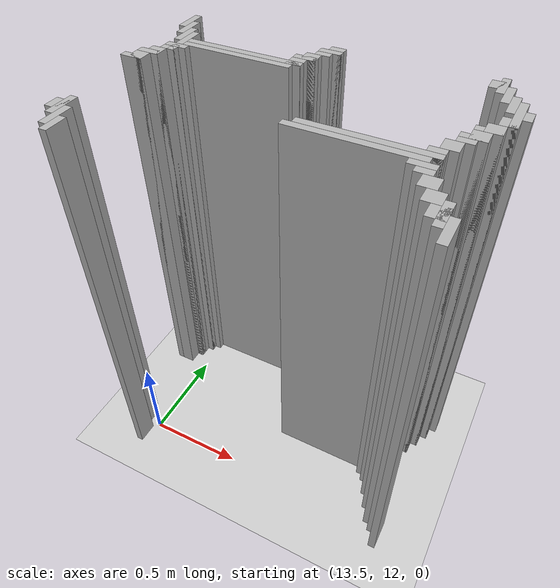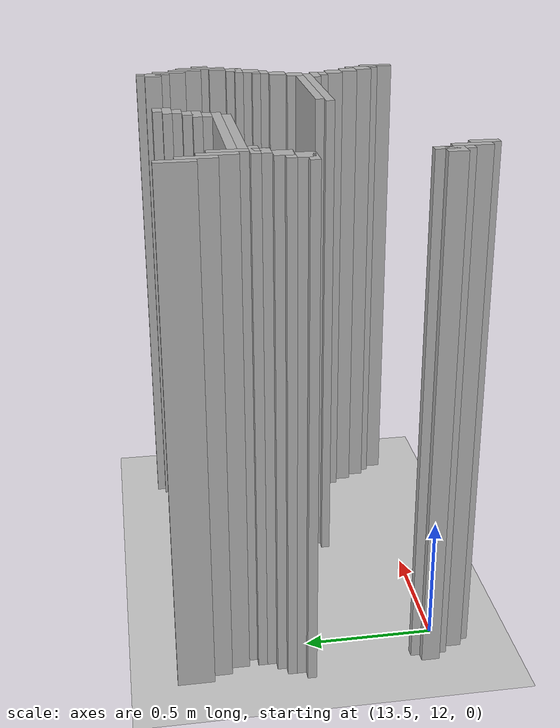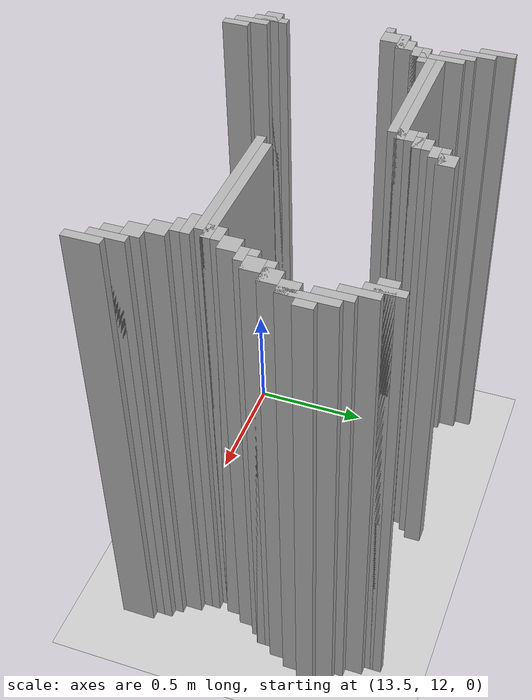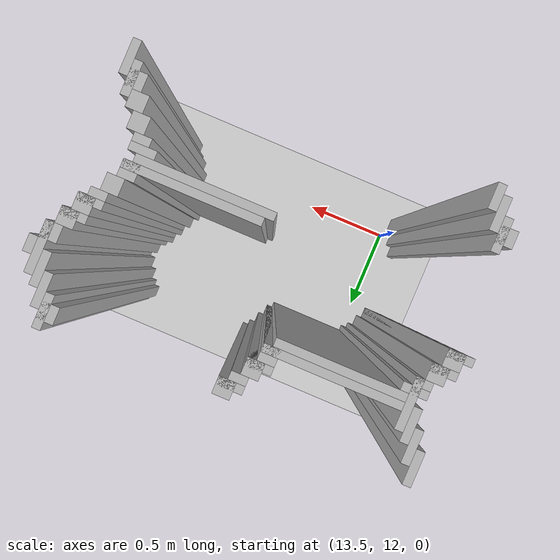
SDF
<sdf version="1.6">
 <world name="slam_world">
  <model name="ground_plane">
   <static>true</static>
   <link name="link">
    <collision name="collision">
     <geometry><plane><normal>0 0 1</normal><size>100 100</size></plane></geometry>
    </collision>
    <visual name="visual">
     <geometry><plane><normal>0 0 1</normal><size>100 100</size></plane></geometry>
     <material>
      <ambient>0.8 0.8 0.8 1</ambient>
      <diffuse>0.8 0.8 0.8 1</diffuse>
      <specular>0.8 0.8 0.8 1</specular>
     </material>
    </visual>
   </link>
  </model>
  <model name="wall_1477">
   <static>true</static>
   <pose>13.346867749419953 12.946635730858468 1.0 0 0 0</pose>
   <link name="link">
    <collision name="collision">
     <geometry><box><size>0.03480278422273782 0.13921113689095127 2.0</size></box></geometry>
    </collision>
    <visual name="visual">
     <geometry><box><size>0.03480278422273782 0.13921113689095127 2.0</size></box></geometry>
     <material><ambient>0.5 0.5 0.5 1</ambient><diffuse>0.7 0.7 0.7 1</diffuse></material>
    </visual>
   </link>
  </model>
  <model name="wall_1479">
   <static>true</static>
   <pose>14.80858468677494 12.946635730858468 1.0 0 0 0</pose>
   <link name="link">
    <collision name="collision">
     <geometry><box><size>0.03480278422273782 0.13921113689095127 2.0</size></box></geometry>
    </collision>
    <visual name="visual">
     <geometry><box><size>0.03480278422273782 0.13921113689095127 2.0</size></box></geometry>
     <material><ambient>0.5 0.5 0.5 1</ambient><diffuse>0.7 0.7 0.7 1</diffuse></material>
    </visual>
   </link>
  </model>
  <model name="wall_1494">
   <static>true</static>
   <pose>14.095127610208817 12.946635730858468 1.0 0 0 0</pose>
   <link name="link">
    <collision name="collision">
     <geometry><box><size>0.06960556844547564 0.06960556844547564 2.0</size></box></geometry>
    </collision>
    <visual name="visual">
     <geometry><box><size>0.06960556844547564 0.06960556844547564 2.0</size></box></geometry>
     <material><ambient>0.5 0.5 0.5 1</ambient><diffuse>0.7 0.7 0.7 1</diffuse></material>
    </visual>
   </link>
  </model>
  <model name="wall_1495">
   <static>true</static>
   <pose>14.791183294663572 12.946635730858468 1.0 0 0 0</pose>
   <link name="link">
    <collision name="collision">
     <geometry><box><size>0.06960556844547564 0.06960556844547564 2.0</size></box></geometry>
    </collision>
    <visual name="visual">
     <geometry><box><size>0.06960556844547564 0.06960556844547564 2.0</size></box></geometry>
     <material><ambient>0.5 0.5 0.5 1</ambient><diffuse>0.7 0.7 0.7 1</diffuse></material>
    </visual>
   </link>
  </model>
  <model name="wall_1509">
   <static>true</static>
   <pose>13.38167053364269 12.877030162412993 1.0 0 0 0</pose>
   <link name="link">
    <collision name="collision">
     <geometry><box><size>0.03480278422273782 0.13921113689095127 2.0</size></box></geometry>
    </collision>
    <visual name="visual">
     <geometry><box><size>0.03480278422273782 0.13921113689095127 2.0</size></box></geometry>
     <material><ambient>0.5 0.5 0.5 1</ambient><diffuse>0.7 0.7 0.7 1</diffuse></material>
    </visual>
   </link>
  </model>
  <model name="wall_1510">
   <static>true</static>
   <pose>14.077726218097448 12.929234338747099 1.0 0 0 0</pose>
   <link name="link">
    <collision name="collision">
     <geometry><box><size>0.10440835266821345 0.03480278422273782 2.0</size></box></geometry>
    </collision>
    <visual name="visual">
     <geometry><box><size>0.10440835266821345 0.03480278422273782 2.0</size></box></geometry>
     <material><ambient>0.5 0.5 0.5 1</ambient><diffuse>0.7 0.7 0.7 1</diffuse></material>
    </visual>
   </link>
  </model>
  <model name="wall_1511">
   <static>true</static>
   <pose>14.84338747099768 12.877030162412993 1.0 0 0 0</pose>
   <link name="link">
    <collision name="collision">
     <geometry><box><size>0.03480278422273782 0.13921113689095127 2.0</size></box></geometry>
    </collision>
    <visual name="visual">
     <geometry><box><size>0.03480278422273782 0.13921113689095127 2.0</size></box></geometry>
     <material><ambient>0.5 0.5 0.5 1</ambient><diffuse>0.7 0.7 0.7 1</diffuse></material>
    </visual>
   </link>
  </model>
  <model name="wall_1520">
   <static>true</static>
   <pose>14.06032482598608 12.894431554524362 1.0 0 0 0</pose>
   <link name="link">
    <collision name="collision">
     <geometry><box><size>0.06960556844547564 0.03480278422273782 2.0</size></box></geometry>
    </collision>
    <visual name="visual">
     <geometry><box><size>0.06960556844547564 0.03480278422273782 2.0</size></box></geometry>
     <material><ambient>0.5 0.5 0.5 1</ambient><diffuse>0.7 0.7 0.7 1</diffuse></material>
    </visual>
   </link>
  </model>
  <model name="wall_1534">
   <static>true</static>
   <pose>13.416473317865428 12.807424593967516 1.0 0 0 0</pose>
   <link name="link">
    <collision name="collision">
     <geometry><box><size>0.03480278422273782 0.13921113689095127 2.0</size></box></geometry>
    </collision>
    <visual name="visual">
     <geometry><box><size>0.03480278422273782 0.13921113689095127 2.0</size></box></geometry>
     <material><ambient>0.5 0.5 0.5 1</ambient><diffuse>0.7 0.7 0.7 1</diffuse></material>
    </visual>
   </link>
  </model>
  <model name="wall_1535">
   <static>true</static>
   <pose>14.02552204176334 12.842227378190255 1.0 0 0 0</pose>
   <link name="link">
    <collision name="collision">
     <geometry><box><size>0.06960556844547564 0.06960556844547564 2.0</size></box></geometry>
    </collision>
    <visual name="visual">
     <geometry><box><size>0.06960556844547564 0.06960556844547564 2.0</size></box></geometry>
     <material><ambient>0.5 0.5 0.5 1</ambient><diffuse>0.7 0.7 0.7 1</diffuse></material>
    </visual>
   </link>
  </model>
  <model name="wall_1536">
   <static>true</static>
   <pose>14.878190255220417 12.807424593967516 1.0 0 0 0</pose>
   <link name="link">
    <collision name="collision">
     <geometry><box><size>0.03480278422273782 0.13921113689095127 2.0</size></box></geometry>
    </collision>
    <visual name="visual">
     <geometry><box><size>0.03480278422273782 0.13921113689095127 2.0</size></box></geometry>
     <material><ambient>0.5 0.5 0.5 1</ambient><diffuse>0.7 0.7 0.7 1</diffuse></material>
    </visual>
   </link>
  </model>
  <model name="wall_1550">
   <static>true</static>
   <pose>13.451276102088167 12.737819025522041 1.0 0 0 0</pose>
   <link name="link">
    <collision name="collision">
     <geometry><box><size>0.03480278422273782 0.2088167053364269 2.0</size></box></geometry>
    </collision>
    <visual name="visual">
     <geometry><box><size>0.03480278422273782 0.2088167053364269 2.0</size></box></geometry>
     <material><ambient>0.5 0.5 0.5 1</ambient><diffuse>0.7 0.7 0.7 1</diffuse></material>
    </visual>
   </link>
  </model>
  <model name="wall_1551">
   <static>true</static>
   <pose>14.008120649651971 12.824825986078885 1.0 0 0 0</pose>
   <link name="link">
    <collision name="collision">
     <geometry><box><size>0.10440835266821345 0.03480278422273782 2.0</size></box></geometry>
    </collision>
    <visual name="visual">
     <geometry><box><size>0.10440835266821345 0.03480278422273782 2.0</size></box></geometry>
     <material><ambient>0.5 0.5 0.5 1</ambient><diffuse>0.7 0.7 0.7 1</diffuse></material>
    </visual>
   </link>
  </model>
  <model name="wall_1552">
   <static>true</static>
   <pose>14.912993039443155 12.737819025522041 1.0 0 0 0</pose>
   <link name="link">
    <collision name="collision">
     <geometry><box><size>0.03480278422273782 0.2088167053364269 2.0</size></box></geometry>
    </collision>
    <visual name="visual">
     <geometry><box><size>0.03480278422273782 0.2088167053364269 2.0</size></box></geometry>
     <material><ambient>0.5 0.5 0.5 1</ambient><diffuse>0.7 0.7 0.7 1</diffuse></material>
    </visual>
   </link>
  </model>
  <model name="wall_1561">
   <static>true</static>
   <pose>13.990719257540603 12.772621809744779 1.0 0 0 0</pose>
   <link name="link">
    <collision name="collision">
     <geometry><box><size>0.06960556844547564 0.06960556844547564 2.0</size></box></geometry>
    </collision>
    <visual name="visual">
     <geometry><box><size>0.06960556844547564 0.06960556844547564 2.0</size></box></geometry>
     <material><ambient>0.5 0.5 0.5 1</ambient><diffuse>0.7 0.7 0.7 1</diffuse></material>
    </visual>
   </link>
  </model>
  <model name="wall_1573">
   <static>true</static>
   <pose>13.747099767981437 12.75522041763341 1.0 0 0 0</pose>
   <link name="link">
    <collision name="collision">
     <geometry><box><size>0.5568445475638051 0.03480278422273782 2.0</size></box></geometry>
    </collision>
    <visual name="visual">
     <geometry><box><size>0.5568445475638051 0.03480278422273782 2.0</size></box></geometry>
     <material><ambient>0.5 0.5 0.5 1</ambient><diffuse>0.7 0.7 0.7 1</diffuse></material>
    </visual>
   </link>
  </model>
  <model name="wall_1574">
   <static>true</static>
   <pose>14.947795823665892 12.737819025522041 1.0 0 0 0</pose>
   <link name="link">
    <collision name="collision">
     <geometry><box><size>0.03480278422273782 0.06960556844547564 2.0</size></box></geometry>
    </collision>
    <visual name="visual">
     <geometry><box><size>0.03480278422273782 0.06960556844547564 2.0</size></box></geometry>
     <material><ambient>0.5 0.5 0.5 1</ambient><diffuse>0.7 0.7 0.7 1</diffuse></material>
    </visual>
   </link>
  </model>
  <model name="wall_1584">
   <static>true</static>
   <pose>13.729698375870068 12.720417633410673 1.0 0 0 0</pose>
   <link name="link">
    <collision name="collision">
     <geometry><box><size>0.5220417633410672 0.03480278422273782 2.0</size></box></geometry>
    </collision>
    <visual name="visual">
     <geometry><box><size>0.5220417633410672 0.03480278422273782 2.0</size></box></geometry>
     <material><ambient>0.5 0.5 0.5 1</ambient><diffuse>0.7 0.7 0.7 1</diffuse></material>
    </visual>
   </link>
  </model>
  <model name="wall_1596">
   <static>true</static>
   <pose>13.451276102088167 12.685614849187935 1.0 0 0 0</pose>
   <link name="link">
    <collision name="collision">
     <geometry><box><size>0.10440835266821345 0.03480278422273782 2.0</size></box></geometry>
    </collision>
    <visual name="visual">
     <geometry><box><size>0.10440835266821345 0.03480278422273782 2.0</size></box></geometry>
     <material><ambient>0.5 0.5 0.5 1</ambient><diffuse>0.7 0.7 0.7 1</diffuse></material>
    </visual>
   </link>
  </model>
  <model name="wall_1597">
   <static>true</static>
   <pose>14.895591647331786 12.668213457076565 1.0 0 0 0</pose>
   <link name="link">
    <collision name="collision">
     <geometry><box><size>0.06960556844547564 0.06960556844547564 2.0</size></box></geometry>
    </collision>
    <visual name="visual">
     <geometry><box><size>0.06960556844547564 0.06960556844547564 2.0</size></box></geometry>
     <material><ambient>0.5 0.5 0.5 1</ambient><diffuse>0.7 0.7 0.7 1</diffuse></material>
    </visual>
   </link>
  </model>
  <model name="wall_1608">
   <static>true</static>
   <pose>13.433874709976797 12.650812064965196 1.0 0 0 0</pose>
   <link name="link">
    <collision name="collision">
     <geometry><box><size>0.06960556844547564 0.03480278422273782 2.0</size></box></geometry>
    </collision>
    <visual name="visual">
     <geometry><box><size>0.06960556844547564 0.03480278422273782 2.0</size></box></geometry>
     <material><ambient>0.5 0.5 0.5 1</ambient><diffuse>0.7 0.7 0.7 1</diffuse></material>
    </visual>
   </link>
  </model>
  <model name="wall_1620">
   <static>true</static>
   <pose>13.39907192575406 12.59860788863109 1.0 0 0 0</pose>
   <link name="link">
    <collision name="collision">
     <geometry><box><size>0.06960556844547564 0.06960556844547564 2.0</size></box></geometry>
    </collision>
    <visual name="visual">
     <geometry><box><size>0.06960556844547564 0.06960556844547564 2.0</size></box></geometry>
     <material><ambient>0.5 0.5 0.5 1</ambient><diffuse>0.7 0.7 0.7 1</diffuse></material>
    </visual>
   </link>
  </model>
  <model name="wall_1621">
   <static>true</static>
   <pose>14.860788863109049 12.59860788863109 1.0 0 0 0</pose>
   <link name="link">
    <collision name="collision">
     <geometry><box><size>0.06960556844547564 0.06960556844547564 2.0</size></box></geometry>
    </collision>
    <visual name="visual">
     <geometry><box><size>0.06960556844547564 0.06960556844547564 2.0</size></box></geometry>
     <material><ambient>0.5 0.5 0.5 1</ambient><diffuse>0.7 0.7 0.7 1</diffuse></material>
    </visual>
   </link>
  </model>
  <model name="wall_1633">
   <static>true</static>
   <pose>13.38167053364269 12.581206496519721 1.0 0 0 0</pose>
   <link name="link">
    <collision name="collision">
     <geometry><box><size>0.10440835266821345 0.03480278422273782 2.0</size></box></geometry>
    </collision>
    <visual name="visual">
     <geometry><box><size>0.10440835266821345 0.03480278422273782 2.0</size></box></geometry>
     <material><ambient>0.5 0.5 0.5 1</ambient><diffuse>0.7 0.7 0.7 1</diffuse></material>
    </visual>
   </link>
  </model>
  <model name="wall_1634">
   <static>true</static>
   <pose>14.84338747099768 12.581206496519721 1.0 0 0 0</pose>
   <link name="link">
    <collision name="collision">
     <geometry><box><size>0.10440835266821345 0.03480278422273782 2.0</size></box></geometry>
    </collision>
    <visual name="visual">
     <geometry><box><size>0.10440835266821345 0.03480278422273782 2.0</size></box></geometry>
     <material><ambient>0.5 0.5 0.5 1</ambient><diffuse>0.7 0.7 0.7 1</diffuse></material>
    </visual>
   </link>
  </model>
  <model name="wall_1644">
   <static>true</static>
   <pose>13.364269141531322 12.529002320185615 1.0 0 0 0</pose>
   <link name="link">
    <collision name="collision">
     <geometry><box><size>0.06960556844547564 0.06960556844547564 2.0</size></box></geometry>
    </collision>
    <visual name="visual">
     <geometry><box><size>0.06960556844547564 0.06960556844547564 2.0</size></box></geometry>
     <material><ambient>0.5 0.5 0.5 1</ambient><diffuse>0.7 0.7 0.7 1</diffuse></material>
    </visual>
   </link>
  </model>
  <model name="wall_1645">
   <static>true</static>
   <pose>14.825986078886311 12.529002320185615 1.0 0 0 0</pose>
   <link name="link">
    <collision name="collision">
     <geometry><box><size>0.06960556844547564 0.06960556844547564 2.0</size></box></geometry>
    </collision>
    <visual name="visual">
     <geometry><box><size>0.06960556844547564 0.06960556844547564 2.0</size></box></geometry>
     <material><ambient>0.5 0.5 0.5 1</ambient><diffuse>0.7 0.7 0.7 1</diffuse></material>
    </visual>
   </link>
  </model>
  <model name="wall_1657">
   <static>true</static>
   <pose>13.346867749419953 12.511600928074245 1.0 0 0 0</pose>
   <link name="link">
    <collision name="collision">
     <geometry><box><size>0.10440835266821345 0.03480278422273782 2.0</size></box></geometry>
    </collision>
    <visual name="visual">
     <geometry><box><size>0.10440835266821345 0.03480278422273782 2.0</size></box></geometry>
     <material><ambient>0.5 0.5 0.5 1</ambient><diffuse>0.7 0.7 0.7 1</diffuse></material>
    </visual>
   </link>
  </model>
  <model name="wall_1658">
   <static>true</static>
   <pose>14.80858468677494 12.511600928074245 1.0 0 0 0</pose>
   <link name="link">
    <collision name="collision">
     <geometry><box><size>0.10440835266821345 0.03480278422273782 2.0</size></box></geometry>
    </collision>
    <visual name="visual">
     <geometry><box><size>0.10440835266821345 0.03480278422273782 2.0</size></box></geometry>
     <material><ambient>0.5 0.5 0.5 1</ambient><diffuse>0.7 0.7 0.7 1</diffuse></material>
    </visual>
   </link>
  </model>
  <model name="wall_1666">
   <static>true</static>
   <pose>14.791183294663572 12.476798143851507 1.0 0 0 0</pose>
   <link name="link">
    <collision name="collision">
     <geometry><box><size>0.06960556844547564 0.03480278422273782 2.0</size></box></geometry>
    </collision>
    <visual name="visual">
     <geometry><box><size>0.06960556844547564 0.03480278422273782 2.0</size></box></geometry>
     <material><ambient>0.5 0.5 0.5 1</ambient><diffuse>0.7 0.7 0.7 1</diffuse></material>
    </visual>
   </link>
  </model>
  <model name="wall_1679">
   <static>true</static>
   <pose>14.756380510440835 12.424593967517401 1.0 0 0 0</pose>
   <link name="link">
    <collision name="collision">
     <geometry><box><size>0.06960556844547564 0.06960556844547564 2.0</size></box></geometry>
    </collision>
    <visual name="visual">
     <geometry><box><size>0.06960556844547564 0.06960556844547564 2.0</size></box></geometry>
     <material><ambient>0.5 0.5 0.5 1</ambient><diffuse>0.7 0.7 0.7 1</diffuse></material>
    </visual>
   </link>
  </model>
  <model name="wall_1692">
   <static>true</static>
   <pose>14.721577726218097 12.354988399071924 1.0 0 0 0</pose>
   <link name="link">
    <collision name="collision">
     <geometry><box><size>0.06960556844547564 0.06960556844547564 2.0</size></box></geometry>
    </collision>
    <visual name="visual">
     <geometry><box><size>0.06960556844547564 0.06960556844547564 2.0</size></box></geometry>
     <material><ambient>0.5 0.5 0.5 1</ambient><diffuse>0.7 0.7 0.7 1</diffuse></material>
    </visual>
   </link>
  </model>
  <model name="wall_1704">
   <static>true</static>
   <pose>14.477958236658932 12.337587006960556 1.0 0 0 0</pose>
   <link name="link">
    <collision name="collision">
     <geometry><box><size>0.5568445475638051 0.03480278422273782 2.0</size></box></geometry>
    </collision>
    <visual name="visual">
     <geometry><box><size>0.5568445475638051 0.03480278422273782 2.0</size></box></geometry>
     <material><ambient>0.5 0.5 0.5 1</ambient><diffuse>0.7 0.7 0.7 1</diffuse></material>
    </visual>
   </link>
  </model>
  <model name="wall_1716">
   <static>true</static>
   <pose>14.443155452436194 12.302784222737818 1.0 0 0 0</pose>
   <link name="link">
    <collision name="collision">
     <geometry><box><size>0.5568445475638051 0.03480278422273782 2.0</size></box></geometry>
    </collision>
    <visual name="visual">
     <geometry><box><size>0.5568445475638051 0.03480278422273782 2.0</size></box></geometry>
     <material><ambient>0.5 0.5 0.5 1</ambient><diffuse>0.7 0.7 0.7 1</diffuse></material>
    </visual>
   </link>
  </model>
  <model name="wall_1735">
   <static>true</static>
   <pose>14.704176334106728 12.267981438515081 1.0 0 0 0</pose>
   <link name="link">
    <collision name="collision">
     <geometry><box><size>0.10440835266821345 0.03480278422273782 2.0</size></box></geometry>
    </collision>
    <visual name="visual">
     <geometry><box><size>0.10440835266821345 0.03480278422273782 2.0</size></box></geometry>
     <material><ambient>0.5 0.5 0.5 1</ambient><diffuse>0.7 0.7 0.7 1</diffuse></material>
    </visual>
   </link>
  </model>
  <model name="wall_1751">
   <static>true</static>
   <pose>14.721577726218097 12.233178654292344 1.0 0 0 0</pose>
   <link name="link">
    <collision name="collision">
     <geometry><box><size>0.06960556844547564 0.03480278422273782 2.0</size></box></geometry>
    </collision>
    <visual name="visual">
     <geometry><box><size>0.06960556844547564 0.03480278422273782 2.0</size></box></geometry>
     <material><ambient>0.5 0.5 0.5 1</ambient><diffuse>0.7 0.7 0.7 1</diffuse></material>
    </visual>
   </link>
  </model>
  <model name="wall_1767">
   <static>true</static>
   <pose>14.756380510440835 12.180974477958236 1.0 0 0 0</pose>
   <link name="link">
    <collision name="collision">
     <geometry><box><size>0.06960556844547564 0.06960556844547564 2.0</size></box></geometry>
    </collision>
    <visual name="visual">
     <geometry><box><size>0.06960556844547564 0.06960556844547564 2.0</size></box></geometry>
     <material><ambient>0.5 0.5 0.5 1</ambient><diffuse>0.7 0.7 0.7 1</diffuse></material>
    </visual>
   </link>
  </model>
  <model name="wall_1783">
   <static>true</static>
   <pose>14.791183294663572 12.11136890951276 1.0 0 0 0</pose>
   <link name="link">
    <collision name="collision">
     <geometry><box><size>0.06960556844547564 0.06960556844547564 2.0</size></box></geometry>
    </collision>
    <visual name="visual">
     <geometry><box><size>0.06960556844547564 0.06960556844547564 2.0</size></box></geometry>
     <material><ambient>0.5 0.5 0.5 1</ambient><diffuse>0.7 0.7 0.7 1</diffuse></material>
    </visual>
   </link>
  </model>
  <model name="wall_1798">
   <static>true</static>
   <pose>13.38167053364269 12.041763341067284 1.0 0 0 0</pose>
   <link name="link">
    <collision name="collision">
     <geometry><box><size>0.03480278422273782 0.13921113689095127 2.0</size></box></geometry>
    </collision>
    <visual name="visual">
     <geometry><box><size>0.03480278422273782 0.13921113689095127 2.0</size></box></geometry>
     <material><ambient>0.5 0.5 0.5 1</ambient><diffuse>0.7 0.7 0.7 1</diffuse></material>
    </visual>
   </link>
  </model>
  <model name="wall_1799">
   <static>true</static>
   <pose>14.84338747099768 12.041763341067284 1.0 0 0 0</pose>
   <link name="link">
    <collision name="collision">
     <geometry><box><size>0.03480278422273782 0.13921113689095127 2.0</size></box></geometry>
    </collision>
    <visual name="visual">
     <geometry><box><size>0.03480278422273782 0.13921113689095127 2.0</size></box></geometry>
     <material><ambient>0.5 0.5 0.5 1</ambient><diffuse>0.7 0.7 0.7 1</diffuse></material>
    </visual>
   </link>
  </model>
  <model name="wall_1808">
   <static>true</static>
   <pose>13.364269141531322 12.041763341067284 1.0 0 0 0</pose>
   <link name="link">
    <collision name="collision">
     <geometry><box><size>0.06960556844547564 0.06960556844547564 2.0</size></box></geometry>
    </collision>
    <visual name="visual">
     <geometry><box><size>0.06960556844547564 0.06960556844547564 2.0</size></box></geometry>
     <material><ambient>0.5 0.5 0.5 1</ambient><diffuse>0.7 0.7 0.7 1</diffuse></material>
    </visual>
   </link>
  </model>
  <model name="wall_1809">
   <static>true</static>
   <pose>14.825986078886311 12.041763341067284 1.0 0 0 0</pose>
   <link name="link">
    <collision name="collision">
     <geometry><box><size>0.06960556844547564 0.06960556844547564 2.0</size></box></geometry>
    </collision>
    <visual name="visual">
     <geometry><box><size>0.06960556844547564 0.06960556844547564 2.0</size></box></geometry>
     <material><ambient>0.5 0.5 0.5 1</ambient><diffuse>0.7 0.7 0.7 1</diffuse></material>
    </visual>
   </link>
  </model>
  <model name="wall_1824">
   <static>true</static>
   <pose>13.416473317865428 11.97215777262181 1.0 0 0 0</pose>
   <link name="link">
    <collision name="collision">
     <geometry><box><size>0.03480278422273782 0.13921113689095127 2.0</size></box></geometry>
    </collision>
    <visual name="visual">
     <geometry><box><size>0.03480278422273782 0.13921113689095127 2.0</size></box></geometry>
     <material><ambient>0.5 0.5 0.5 1</ambient><diffuse>0.7 0.7 0.7 1</diffuse></material>
    </visual>
   </link>
  </model>
  <model name="wall_1825">
   <static>true</static>
   <pose>14.878190255220417 11.97215777262181 1.0 0 0 0</pose>
   <link name="link">
    <collision name="collision">
     <geometry><box><size>0.03480278422273782 0.13921113689095127 2.0</size></box></geometry>
    </collision>
    <visual name="visual">
     <geometry><box><size>0.03480278422273782 0.13921113689095127 2.0</size></box></geometry>
     <material><ambient>0.5 0.5 0.5 1</ambient><diffuse>0.7 0.7 0.7 1</diffuse></material>
    </visual>
   </link>
  </model>
  <model name="wall_1847">
   <static>true</static>
   <pose>13.451276102088167 11.919953596287703 1.0 0 0 0</pose>
   <link name="link">
    <collision name="collision">
     <geometry><box><size>0.03480278422273782 0.10440835266821345 2.0</size></box></geometry>
    </collision>
    <visual name="visual">
     <geometry><box><size>0.03480278422273782 0.10440835266821345 2.0</size></box></geometry>
     <material><ambient>0.5 0.5 0.5 1</ambient><diffuse>0.7 0.7 0.7 1</diffuse></material>
    </visual>
   </link>
  </model>
 </world>
</sdf>
